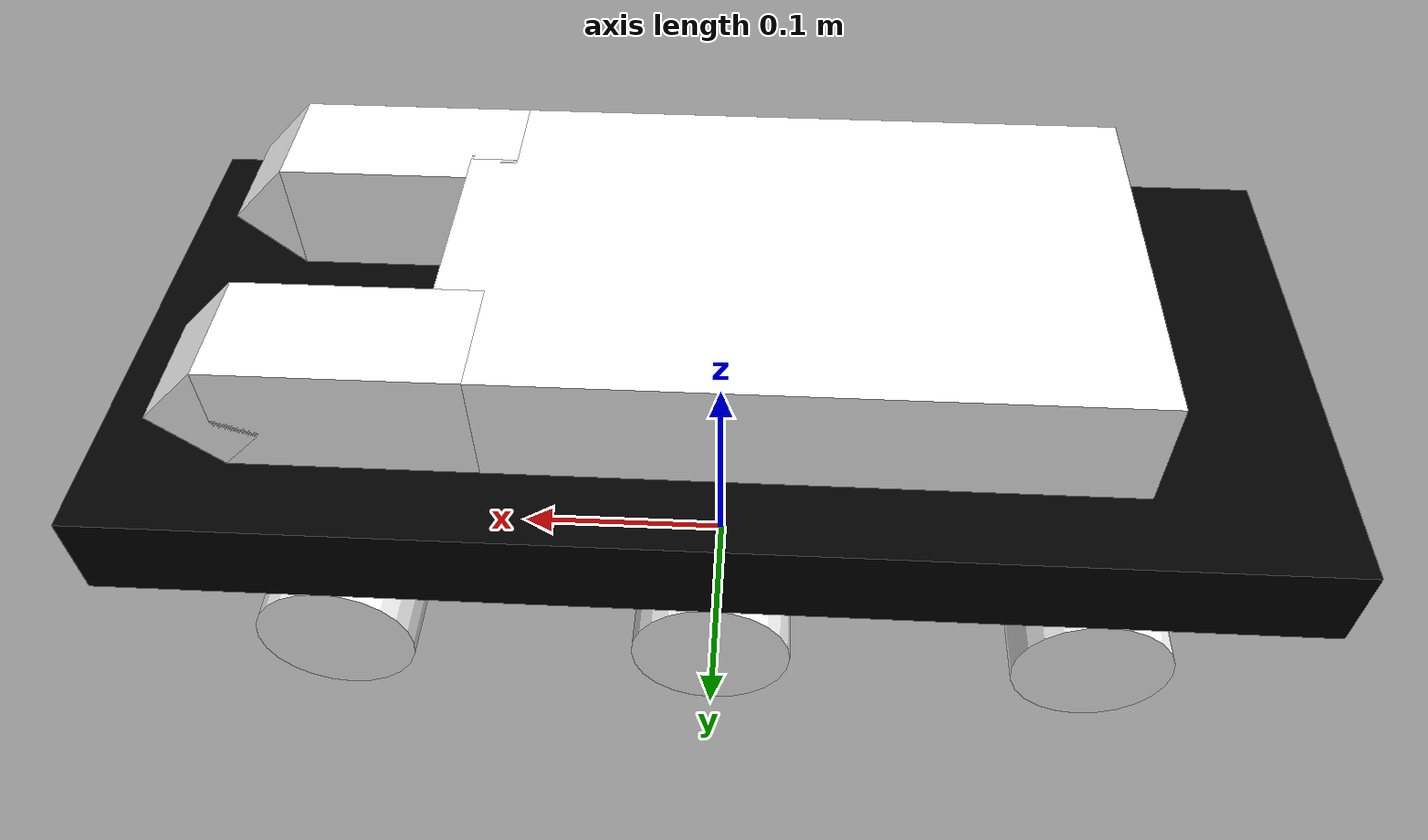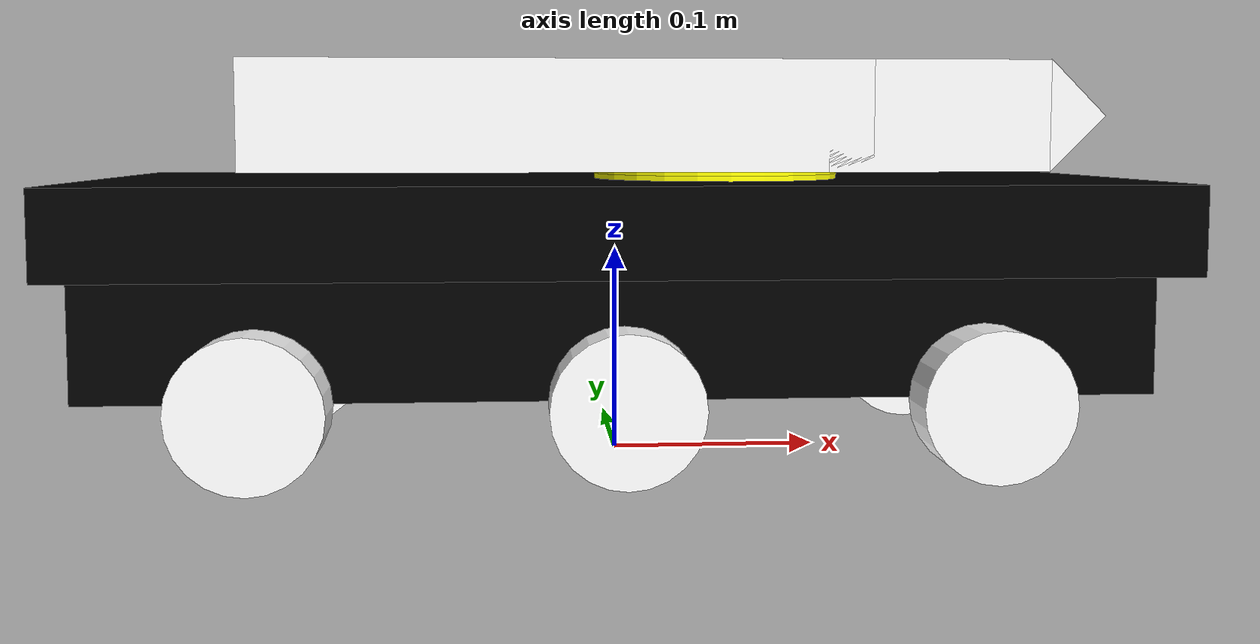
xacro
<?xml version="1.0"?>
<robot xmlns:xacro="http://www.ros.org/wiki/xacro" name="leopard">

  <xacro:arg name="is_sim" default="true"/>

  <xacro:include filename="material.xacro" />

  <!--  Chassis Turm und Rohr -->
  <xacro:include filename="chassi.xacro" />

  <xacro:include filename="turret.xacro" />

  <!-- Gazebo und Ros2 Control-->
  <xacro:include filename="leopard_gazebo.xacro"/>

  <xacro:include filename="leopard_ros2_control.xacro"/>

</robot>

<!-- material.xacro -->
<robot xmlns:xacro="http://www.ros.org/wiki/xacro" >

    <material name="red">
        <color rgba="1 0 0 1"/>
    </material>

    <material name="green">
        <color rgba="0 1 0 1"/>
    </material>

    <material name="blue">
        <color rgba="0 0 1 1"/>
    </material>

    <material name="white">
        <color rgba="1 1 1 1"/>
    </material>

    <material name="black">
        <color rgba="0 0 0 1"/>
    </material>

    <material name="orange">
        <color rgba="1 0.65 0 1"/>
    </material>

    <material name="yellow">
        <color rgba="1 1 0 1"/>
    </material>

    <xacro:macro name="box_inertia" params="m l w h xyz rpy">
        <inertial>
            <origin xyz="${xyz}" rpy="${rpy}" />
            <mass value="${m}" />
            <inertia ixx="${(m/12) * (h*h + l*l)}" ixy="0" ixz="0"
                     iyy="${(m/12) * (w*w + l*l)}" iyz="0"
                     izz="${(m/12) * (w*w + h*h)}" />
        </inertial>
    </xacro:macro>

    <xacro:macro name="cylinder_inertia" params="m r h xyz rpy">
        <inertial>
            <origin xyz="${xyz}" rpy="${rpy}" />
            <mass value="${m}" />
            <inertia ixx="${(m/12) * (3*r*r + h*h)}" ixy="0" ixz="0"
                     iyy="${(m/12) * (3*r*r + h*h)}" iyz="0"
                     izz="${(m/2) * (r*r)}" />
        </inertial>
    </xacro:macro>

    <xacro:macro name="sphere_inertia" params="m r xyz rpy">
        <inertial>
            <origin xyz="${xyz}" rpy="${rpy}" />
            <mass value="${m}" />
            <inertia ixx="${(2/5) * m * r * r}" ixy="0" ixz="0"
                     iyy="${(2/5) * m * r * r}" iyz="0"
                     izz="${(2/5) * m * r * r}" />
        </inertial>
    </xacro:macro>

</robot>

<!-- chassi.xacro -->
<robot xmlns:xacro="http://www.ros.org/wiki/xacro">

    <xacro:property name="chassi_length" value="0.5" />
    <xacro:property name="chassi_width" value="0.13" />
    <xacro:property name="chassi_height" value="0.06" />

    <xacro:property name="chassi_top_length" value="0.5" />
    <xacro:property name="chassi_top_width" value="0.23" />
    <xacro:property name="chassi_top_height" value="0.04" />

    <xacro:property name="wheel_radius" value="0.035" />
    <xacro:property name="wheel_length" value="0.028" />

    <!-- Links-->

    <link name="base_footprint" />

    <!-- Chassis Aufbau-->

    <link name="chassis">
        <visual>
            <origin xyz="0.0 0.0 ${chassi_height/2}" rpy="0.0 0.0 0.0" />
            <geometry>
                <box size="${chassi_length} ${chassi_width} ${chassi_height}" />
            </geometry>
            <material name="black" />
        </visual>
        <collision>
            <origin xyz="0.0 0.0 ${chassi_height/2}" rpy="0.0 0.0 0.0" />
            <geometry>
                <box size="${chassi_length} ${chassi_width} ${chassi_height}" />
            </geometry>
        </collision>
        <xacro:box_inertia m="3.0" l="${chassi_length}" w="${chassi_width}" h="${chassi_height}"
            xyz="0.0 0.0 ${chassi_height/2}" rpy="0 0 0" />
    </link>
    <gazebo reference="chassis">
        <material>Gazebo/Grass</material>
    </gazebo>

    <link name="chassis_top">
        <visual>
            <origin xyz="0.0 0.0 ${chassi_top_height/2}" rpy="0.0 0.0 0.0" />
            <geometry>
                <box size="${chassi_top_length} ${chassi_top_width} ${chassi_top_height}" />
            </geometry>
            <material name="black" />
        </visual>
        <collision>
            <origin xyz="0.0 0.0 ${chassi_top_height/2}" rpy="0.0 0.0 0.0" />
            <geometry>
                <box size="${chassi_top_length} ${chassi_top_width} ${chassi_top_height}" />
            </geometry>
        </collision>
        <xacro:box_inertia m="1.0" l="${chassi_top_length}" w="${chassi_top_width}"
            h="${chassi_top_height}"
            xyz="0.0 0.0 ${chassi_top_height/2}" rpy="0 ${pi/2} 0" />
    </link>
    <gazebo reference="chassis_top">
        <material>Gazebo/Grass</material>
    </gazebo>

    <!-- WHEELS-->

    <xacro:macro name="wheel_link" params="prefix ">
        <link name="${prefix}_wheel">
            <visual>
                <origin xyz="0.0 0.0 0.0" rpy="${pi/2} 0.0 0.0" />
                <geometry>
                    <cylinder radius="${wheel_radius}" length="${wheel_length}" />
                </geometry>
                <material name="white" />
            </visual>
            <collision>
                <origin xyz="0.0 0.0 0.0" rpy="${pi/2} 0.0 0.0" />
                <geometry>
                    <sphere radius="${wheel_radius}" />
                </geometry>
            </collision>
            <xacro:cylinder_inertia m="0.3" r="${wheel_radius/2}" h="${wheel_length/2}"
                xyz="0 0 0" rpy="${pi/2} 0 0" />
        </link>
        <gazebo reference="${prefix}_wheel">
            <material>Gazebo/Grey</material>
            <mu1>100000000000000.0</mu1>
            <mu2>100000000000000.0</mu2>
            <kp>1000000000000.0</kp>
            <kd>10.0</kd>
            <minDepth>0.001</minDepth>
            <maxVel>0.1</maxVel>
            <fdir1>1 0 0</fdir1>
        </gazebo>
    </xacro:macro>

    <xacro:wheel_link prefix="right" />
    <xacro:wheel_link prefix="left" />

    <xacro:macro name="caster_wheel_link" params="prefix ">
        <link name="${prefix}_caster_wheel">
            <visual>
                <origin xyz="0.0 0.0 0.0" rpy="${pi/2} 0.0 0.0" />
                <geometry>
                    <cylinder radius="${wheel_radius}" length="${wheel_length}" />
                </geometry>
                <material name="white" />
            </visual>
            <collision>
                <origin xyz="0.0 0.0 0.0" rpy="${pi/2} 0.0 0.0" />
                <geometry>
                    <sphere radius="${wheel_radius}" />
                </geometry>
            </collision>
            <xacro:cylinder_inertia m="0.3" r="${wheel_radius/2}" h="${wheel_length/2}"
                xyz="0 0 0" rpy="${pi/2} 0 0" />
        </link>
        <gazebo reference="${prefix}_caster_wheel">
            <material>Gazebo/Grey</material>
            <mu1>0.01</mu1>
            <mu2>0.01</mu2>
            <kp>1000000.0</kp>
            <kd>100.0</kd>
            <minDepth>0.001</minDepth>
            <maxVel>0.1</maxVel>
        </gazebo>
    </xacro:macro>

    <xacro:caster_wheel_link prefix="left_f" />
    <xacro:caster_wheel_link prefix="left_r" />
    <xacro:caster_wheel_link prefix="right_f" />
    <xacro:caster_wheel_link prefix="right_r" />

    <!-- Joints Fixed -->

    <joint name="base_link" type="fixed">
        <parent link="base_footprint" />
        <child link="chassis" />
        <origin xyz="0.0 0.0 ${wheel_radius}" rpy="0.0 0.0 0.0" />
    </joint>

    <joint name="chassieAufbau" type="fixed">
        <parent link="chassis" />
        <child link="chassis_top" />
        <origin xyz="0.0 0.0 ${chassi_height}" rpy="0.0 0.0 0.0" />
    </joint>

    <joint name="joint_rf" type="fixed">
        <parent link="chassis" />
        <child link="right_f_caster_wheel" />
        <origin xyz="${chassi_length/3} -${chassi_width/2 + wheel_length/2 + 0.005} 0" rpy="0 0 0" />
    </joint>

    <joint name="joint_rr" type="fixed">
        <parent link="chassis" />
        <child link="right_r_caster_wheel" />
        <origin xyz="-${chassi_length/3} -${chassi_width/2 + wheel_length/2 + 0.005} 0" rpy="0 0 0" />
    </joint>

    <joint name="joint_lf" type="fixed">
        <parent link="chassis" />
        <child link="left_f_caster_wheel" />
        <origin xyz="${chassi_length/3} ${chassi_width/2 + wheel_length/2 + 0.005} 0" rpy="0 0 0" />
    </joint>

    <joint name="joint_lr" type="fixed">
        <parent link="chassis" />
        <child link="left_r_caster_wheel" />
        <origin xyz="-${chassi_length/3} ${chassi_width/2 + wheel_length/2 + 0.005} 0" rpy="0 0 0" />
    </joint>

    <!-- Joints Moving-->

    <joint name="joint_1" type="continuous">
        <parent link="chassis" />
        <child link="right_wheel" />
        <axis xyz="0 1 0" />
        <origin xyz="0 -${chassi_width/2 + wheel_length/2 + 0.005} 0" rpy="0 0 0" />
    </joint>

    <joint name="joint_2" type="continuous">
        <parent link="chassis" />
        <child link="left_wheel" />
        <axis xyz="0 1 0" />
        <origin xyz="0 ${chassi_width/2+ wheel_length/2 + 0.005} 0" rpy="0 0 0" />
    </joint>

</robot>

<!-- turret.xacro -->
<robot xmlns:xacro="http://www.ros.org/wiki/xacro">

    <!-- Turm Auflage-->

    <xacro:macro name="turret_coil" params="prefix">
        <link name="${prefix}_coil">
            <visual>
                <geometry>
                    <cylinder radius="0.06" length="0.005" />
                </geometry>
                <material name="yellow" />
            </visual>
            <collision>
                <geometry>
                    <cylinder radius="0.06" length="0.005" />
                </geometry>
            </collision>
            <xacro:cylinder_inertia m="0.1" r="0.06" h="0.005"
                           xyz="0 0 0" rpy="0 0 0"/>
        </link>
        <gazebo reference="${prefix}_coil">
            <material>Gazebo/Black</material>
            <mu1>100000000000000.0</mu1>
            <mu2>100000000000000.0</mu2>
            <kp>1000000000000.0</kp>
            <kd>10.0</kd>
            <minDepth>0.001</minDepth>
            <maxVel>0.1</maxVel>
            <fdir1>0 0 1</fdir1>
        </gazebo>
    </xacro:macro>

    <xacro:turret_coil prefix="top" />
    <xacro:turret_coil prefix="down" />

    <!-- Turm -->

    <link name="turm_top_">
        <visual>
            <geometry>
                <box size="0.28 0.17 0.05" />
            </geometry>
            <material name="white" />
        </visual>
        <collision>
            <geometry>
                <box size="0.28 0.17 0.05" />
            </geometry>
            <material name="white" />
        </collision>
        <xacro:box_inertia m="0.5" l="0.02" w="0.01" h="0.05"
                           xyz="0.06 0 0" rpy="0 0 0"/>

    </link>
    <gazebo reference="turm_top_">
        <material>Gazebo/Grass</material>
    </gazebo>

    <xacro:macro name="turm_seite" params="prefix">
        <link name="turm_top_${prefix}">
            <visual>
                <geometry>
                    <box size="0.1 0.05 0.05" />
                </geometry>
                <material name="white" />
            </visual>
            <collision>
                <geometry>
                    <box size="0.1 0.05 0.05" />
                </geometry>
            </collision>
            <xacro:box_inertia m="0.2" l="0.005" w="0.0025" h="0.0025"
                           xyz="0 0 0" rpy="0 0 0"/>
        </link>
        <gazebo reference="turm_top_${prefix}">
            <material>Gazebo/Grass</material>
        </gazebo>

        <link name="turm_deko_${prefix}">
            <visual>
                <origin xyz="0.0 0.0 0.0" rpy="0.0 ${pi/4} 0.0" />
                <geometry>
                    <box size="0.0355 0.05 0.0355" />
                </geometry>
                <material name="white" />
            </visual>
            <collision>
                <origin xyz="0.0 0.0 0.0" rpy="0.0 ${pi/4} 0.0" />
                <geometry>
                    <box size="0.0355 0.05 0.0355" />
                </geometry>
            </collision>
            <xacro:box_inertia m="0.1" l="0.00355" w="0.005" h="0.00355"
                               xyz="0 0 0" rpy="0.0 ${pi/4} 0.0"/>
        </link>
        <gazebo reference="turm_deko_${prefix}">
            <material>Gazebo/Grass</material>
        </gazebo>

        <joint name="gun_deko_${prefix}" type="fixed">
            <parent link="turm_top_${prefix}" />
            <child link="turm_deko_${prefix}" />
            <origin xyz="0.05 0.0 0.0" rpy="0.0 0.0 0.0" />
        </joint>
    </xacro:macro>

    <xacro:turm_seite prefix="r" />
    <xacro:turm_seite prefix="l" />

    <!-- JOINTS Turret -->

    <joint name="fixirung" type="fixed">
        <origin xyz="0.05 0.0 0.04" rpy="0.0 0.0 0.0" />
        <parent link="chassis_top" />
        <child link="down_coil" />
    </joint>

    <joint name="joint_3" type="continuous">
        <parent link="down_coil" />
        <child link="top_coil" />
        <axis xyz="0 0 1" />
        <origin xyz="0 0 0.005" rpy="0 0 0" />
    </joint>

    <!-- Turm_joints-->

    <joint name="turm_top_joint" type="fixed">
        <parent link="top_coil" />
        <child link="turm_top_" />
        <origin xyz="-0.08 0.0 0.025" />
    </joint>

    <joint name="turm_top_left" type="fixed">
        <parent link="turm_top_" />
        <child link="turm_top_l" />
        <origin xyz="0.17 0.06 0.0" />
    </joint>

    <joint name="turm_top_right" type="fixed">
        <parent link="turm_top_" />
        <child link="turm_top_r" />
        <origin xyz="0.17 -0.06 0.0" />
    </joint>

    <transmission name="turret_transmission" >
        <plugin>
            transmission_interface/SimpleTransmission
        </plugin>
        <actuator name="turret_motor" role="actuator_turret" />
        <joint name="joint_3" role="joint_rotate" >
            <mechanical_reduction>1.0</mechanical_reduction>
        </joint>
    </transmission>

    <ros2_control type="system" name="Turret_System">

        <xacro:if value="$(arg is_sim)">
            <hardware>
                <plugin>gazebo_ros2_control/GazeboSystem</plugin>
            </hardware>
        </xacro:if>

        <xacro:unless value="$(arg is_sim)">
            <hardware>
                <plugin>turret_firmware/TurretInterface</plugin>
                <param name="port">/dev/ttyUSB1</param>
            </hardware>
        </xacro:unless>

        <joint name="joint_3">
            <command_interface name="velocity">
                <parma name="min">-1</parma>
                <parma name="max">1</parma>
            </command_interface>
            <state_interface name="position" />
            <state_interface name="velocity" />
        </joint>

    </ros2_control>

</robot>
